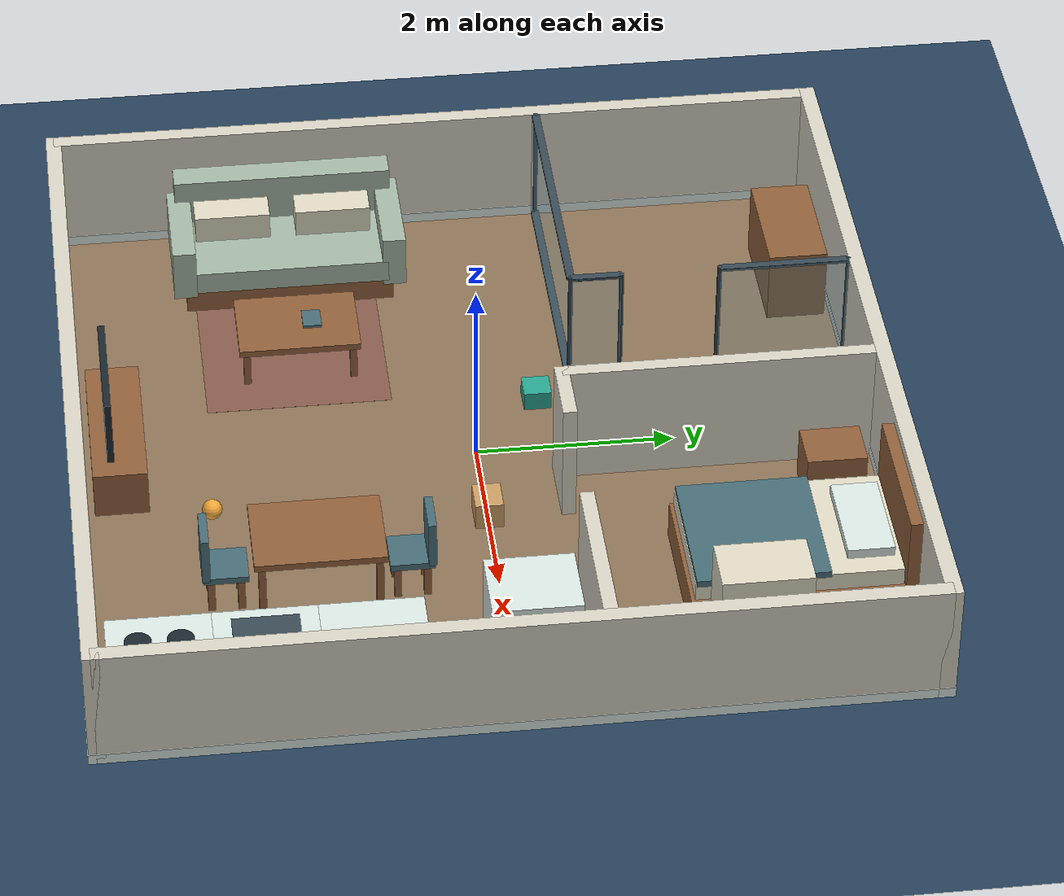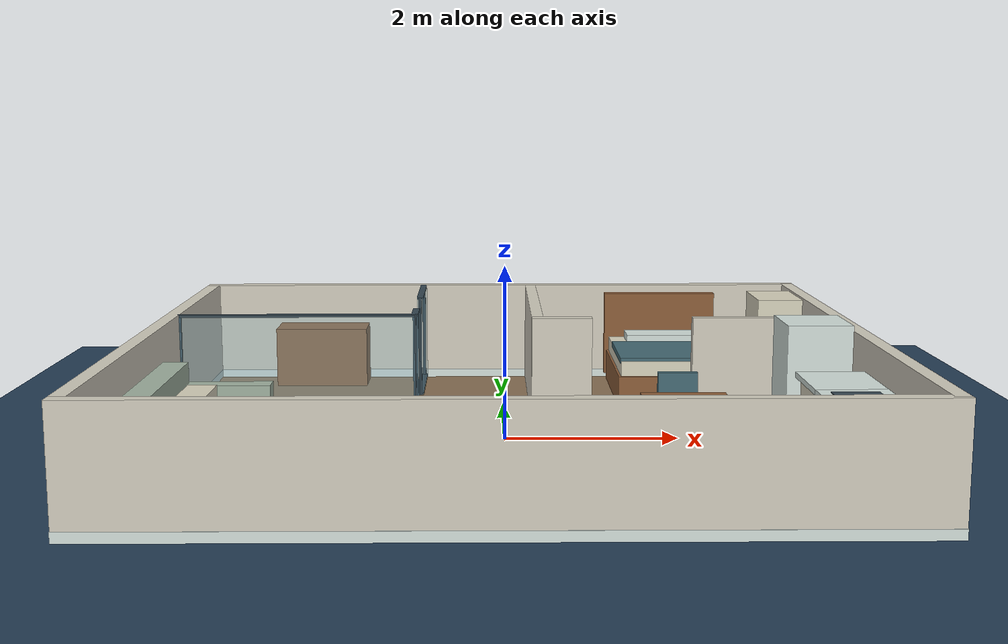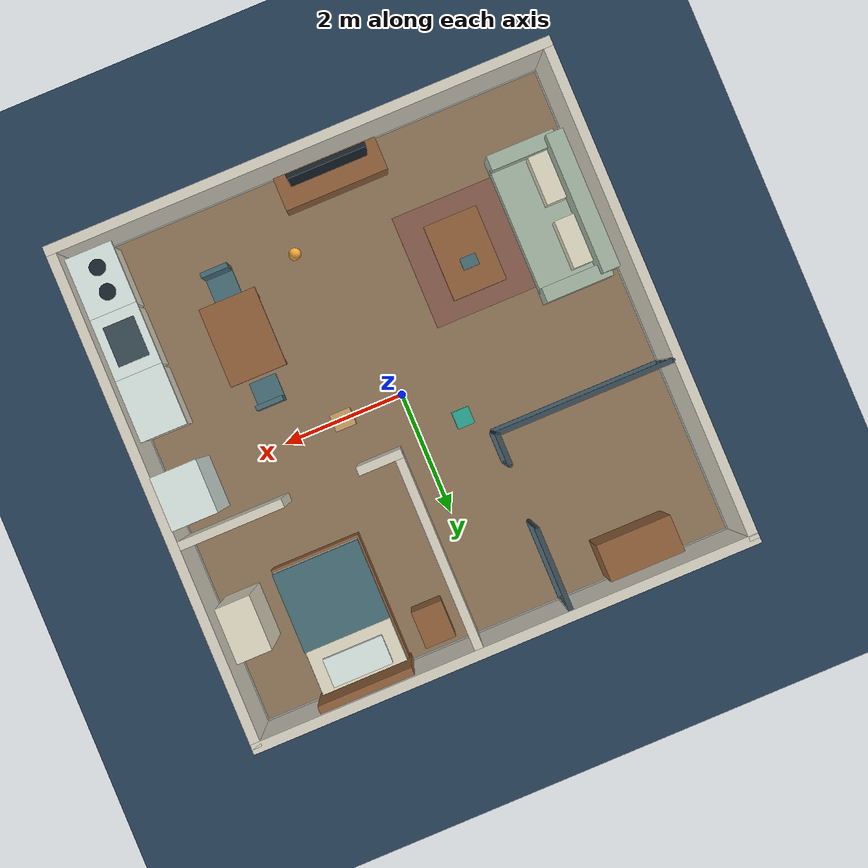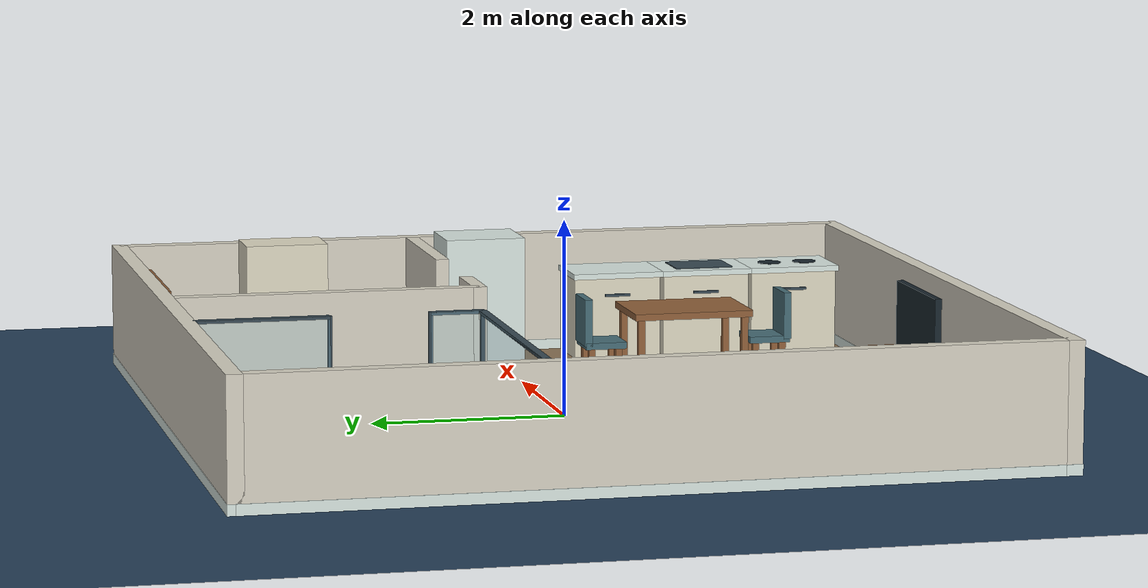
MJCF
<mujoco model="lekiwi_home">
  <!--8 x 8 m apartment. Open spawn at (0,0); three lightweight free-body props.-->
  <statistic center="0 0 .35" extent="5.8" />
  <visual>
    <headlight diffuse=".55 .55 .55" ambient=".35 .35 .35" specular=".1 .1 .1" />
    <quality shadowsize="4096" />
    <global azimuth="135" elevation="-48" offwidth="1440" offheight="1080" />
  </visual>
  <asset>
    <texture name="home_sky" type="skybox" builtin="gradient" rgb1=".32 .40 .49" rgb2=".72 .78 .81" width="512" height="3072" />
    <texture name="home_tiles" type="2d" builtin="checker" rgb1=".53 .43 .32" rgb2=".58 .48 .36" width="512" height="512" />
    <material name="home_wall" rgba=".85 .83 .77 1" roughness=".8" />
    <material name="home_trim" rgba=".32 .36 .35 1" roughness=".8" />
    <material name="home_blue" rgba=".28 .43 .47 1" roughness=".8" />
    <material name="home_yellow" rgba=".95 .66 .22 1" roughness=".8" />
    <material name="home_teal" rgba=".16 .65 .57 1" roughness=".8" />
    <material name="home_white" rgba=".86 .91 .89 1" roughness=".8" />
    <material name="home_steel" rgba=".22 .29 .33 1" roughness=".8" />
    <material name="home_crate" rgba=".65 .42 .24 1" roughness=".8" />
    <material name="home_crate_light" rgba=".80 .62 .39 1" roughness=".8" />
    <material name="home_dark" rgba=".10 .15 .18 1" roughness=".8" />
    <material name="home_floor" texture="home_tiles" texuniform="true" texrepeat="2 .5" reflectance=".03" />
    <material name="home_wood" rgba=".57 .38 .23 1" />
    <material name="home_fabric" rgba=".65 .72 .65 1" />
    <material name="home_linen" rgba=".88 .86 .77 1" />
    <material name="home_rug" rgba=".53 .36 .30 1" />
    <material name="home_glass" rgba=".58 .82 .9 .24" specular=".8" shininess=".8" reflectance=".08" />
    <texture type="2d" name="groundplane" builtin="checker" mark="edge" rgb1="0.2 0.3 0.4" rgb2="0.1 0.2 0.3" markrgb="0.8 0.8 0.8" width="300" height="300" />
    <material name="groundplane" texture="groundplane" texuniform="true" texrepeat="5 5" reflectance="0.2" />
  </asset>
  <worldbody>
    <light name="home_key" pos="-2 -2 6" dir=".2 .2 -1" directional="true" diffuse=".8 .78 .72" />
    <light name="home_fill" pos="3 2 5" dir="-.2 -.1 -1" directional="true" castshadow="false" diffuse=".4 .48 .55" />
    <camera name="home_overview" pos="8 -10 11" xyaxes=".7809 .6247 0 -.4154 .5192 .7461" />
    <camera name="home_top" pos="0 0 12" xyaxes="1 0 0 0 1 0" />
    <geom name="floor" type="plane" size="0 0 .05" material="groundplane" friction=".4 .005 .0001" />
    <!--Apartment finish stops at the outer wall faces; standard infinite checkerboard supplies ground contact.-->
    <geom name="home_floor_finish" type="box" pos="0 0 0" size="4.08 4.08 .001" material="home_floor" contype="0" conaffinity="0" group="2" />
    <!--Low 1.3 m cutaway walls keep all rooms visible from the overview camera.-->
    <geom name="wall_north" type="box" pos="0 4 0.65" size="4.08 0.08 0.65" material="home_wall" />
    <geom name="home_north_skirt" type="box" pos="0 4 0.055" size="4.084 0.084 0.055" material="home_white" />
    <geom name="wall_south" type="box" pos="0 -4 0.65" size="4.08 0.08 0.65" material="home_wall" />
    <geom name="home_south_skirt" type="box" pos="0 -4 0.055" size="4.084 0.084 0.055" material="home_white" />
    <geom name="wall_east" type="box" pos="4 0 0.65" size="0.08 4 0.65" material="home_wall" />
    <geom name="home_east_skirt" type="box" pos="4 0 0.055" size="0.084 4.004 0.055" material="home_white" />
    <geom name="wall_west" type="box" pos="-4 0 0.65" size="0.08 4 0.65" material="home_wall" />
    <geom name="home_west_skirt" type="box" pos="-4 0 0.055" size="0.084 4.004 0.055" material="home_white" />
    <!--Expanded northeast bedroom; 1.2 m doorway, clear central hallway.-->
    <geom name="home_bedroom_west" type="box" pos=".4 2.36 .65" size=".07 1.56 .65" material="home_wall" />
    <geom name="home_bedroom_south_left" type="box" pos=".69 .8 .65" size=".36 .07 .65" material="home_wall" />
    <geom name="home_bedroom_south_right" type="box" pos="3.085 .8 .65" size=".835 .07 .65" material="home_wall" />
    <!--Living room southwest: sofa, rug and a coffee table with individual legs.-->
    <geom name="home_living_rug" type="box" pos="-2.05 -1.7 0.0015" size="1.12 0.94 0.001" material="home_rug" contype="0" conaffinity="0" group="2" mass="0" />
    <geom name="home_sofa_plinth" type="box" pos="-3.18 -1.65 0.16" size="0.55 1.08 0.16" material="home_wood" />
    <geom name="home_sofa_seat" type="box" pos="-3.12 -1.65 0.38" size="0.53 1.03 0.12" material="home_fabric" />
    <geom name="home_sofa_back" type="box" pos="-3.65 -1.65 0.62" size="0.14 1.13 0.38" material="home_fabric" />
    <geom name="home_sofa_arm_-2.74" type="box" pos="-3.14 -2.74 0.49" size="0.55 0.12 0.28" material="home_fabric" />
    <geom name="home_sofa_arm_-0.56" type="box" pos="-3.14 -0.56 0.49" size="0.55 0.12 0.28" material="home_fabric" />
    <geom name="home_sofa_cushion_-2.2" type="box" pos="-3.32 -2.2 0.61" size="0.16 0.39 0.18" material="home_linen" />
    <geom name="home_sofa_cushion_-1.15" type="box" pos="-3.32 -1.15 0.61" size="0.16 0.39 0.18" material="home_linen" />
    <geom name="home_coffee_table_top" type="box" pos="-1.75 -1.65 0.42" size="0.44 0.62 0.035" material="home_wood" />
    <geom name="home_coffee_table_leg_0_0" type="box" pos="-2.1149999999999998 -2.195 0.1925" size="0.035 0.035 0.1925" material="home_wood" />
    <geom name="home_coffee_table_leg_0_1" type="box" pos="-2.1149999999999998 -1.1049999999999998 0.1925" size="0.035 0.035 0.1925" material="home_wood" />
    <geom name="home_coffee_table_leg_1_0" type="box" pos="-1.385 -2.195 0.1925" size="0.035 0.035 0.1925" material="home_wood" />
    <geom name="home_coffee_table_leg_1_1" type="box" pos="-1.385 -1.1049999999999998 0.1925" size="0.035 0.035 0.1925" material="home_wood" />
    <geom name="home_coffee_book" type="box" pos="-1.76 -1.5 0.47" size="0.13 0.095 0.015" material="home_blue" />
    <geom name="home_tv_console" type="box" pos="-0.3 -3.58 0.25" size="0.85 0.27 0.25" material="home_wood" />
    <geom name="home_tv" type="box" pos="-0.3 -3.66 0.84" size="0.64 0.035 0.37" material="home_dark" />
    <!--Kitchen southeast with counters, sink, hob and a dining table.-->
    <geom name="home_kitchen_cabinet_0" type="box" pos="3.57 -3.35 0.44" size="0.35 0.48 0.44" material="home_linen" />
    <geom name="home_kitchen_worktop_0" type="box" pos="3.55 -3.35 0.91" size="0.39 0.5 0.03" material="home_white" />
    <geom name="home_cabinet_handle_0" type="box" pos="3.209 -3.35 0.69" size="0.015 0.14 0.014" material="home_steel" />
    <geom name="home_kitchen_cabinet_1" type="box" pos="3.57 -2.35 0.44" size="0.35 0.48 0.44" material="home_linen" />
    <geom name="home_kitchen_worktop_1" type="box" pos="3.55 -2.35 0.91" size="0.39 0.5 0.03" material="home_white" />
    <geom name="home_cabinet_handle_1" type="box" pos="3.209 -2.35 0.69" size="0.015 0.14 0.014" material="home_steel" />
    <geom name="home_kitchen_cabinet_2" type="box" pos="3.57 -1.35 0.44" size="0.35 0.48 0.44" material="home_linen" />
    <geom name="home_kitchen_worktop_2" type="box" pos="3.55 -1.35 0.91" size="0.39 0.5 0.03" material="home_white" />
    <geom name="home_cabinet_handle_2" type="box" pos="3.209 -1.35 0.69" size="0.015 0.14 0.014" material="home_steel" />
    <geom name="home_sink" type="box" pos="3.53 -2.35 0.946" size="0.25 0.32 0.005" material="home_steel" contype="0" conaffinity="0" group="2" mass="0" />
    <geom name="home_hob_-3.55" type="cylinder" size=".13 .004" pos="3.5 -3.55 .948" material="home_dark" contype="0" conaffinity="0" group="2" />
    <geom name="home_hob_-3.15" type="cylinder" size=".13 .004" pos="3.5 -3.15 .948" material="home_dark" contype="0" conaffinity="0" group="2" />
    <geom name="home_fridge" type="box" pos="3.55 0.13 0.68" size="0.37 0.43 0.68" material="home_white" />
    <geom name="home_dining_table_top" type="box" pos="1.9 -1.75 0.73" size="0.46 0.64 0.035" material="home_wood" />
    <geom name="home_dining_table_leg_0_0" type="box" pos="1.515 -2.315 0.3475" size="0.035 0.035 0.3475" material="home_wood" />
    <geom name="home_dining_table_leg_0_1" type="box" pos="1.515 -1.1849999999999998 0.3475" size="0.035 0.035 0.3475" material="home_wood" />
    <geom name="home_dining_table_leg_1_0" type="box" pos="2.2849999999999997 -2.315 0.3475" size="0.035 0.035 0.3475" material="home_wood" />
    <geom name="home_dining_table_leg_1_1" type="box" pos="2.2849999999999997 -1.1849999999999998 0.3475" size="0.035 0.035 0.3475" material="home_wood" />
    <geom name="home_chair_0_top" type="box" pos="1.9 -2.65 0.4" size="0.22 0.22 0.035" material="home_blue" />
    <geom name="home_chair_0_leg_0_0" type="box" pos="1.755 -2.795 0.1825" size="0.035 0.035 0.1825" material="home_wood" />
    <geom name="home_chair_0_leg_0_1" type="box" pos="1.755 -2.505 0.1825" size="0.035 0.035 0.1825" material="home_wood" />
    <geom name="home_chair_0_leg_1_0" type="box" pos="2.045 -2.795 0.1825" size="0.035 0.035 0.1825" material="home_wood" />
    <geom name="home_chair_0_leg_1_1" type="box" pos="2.045 -2.505 0.1825" size="0.035 0.035 0.1825" material="home_wood" />
    <geom name="home_chair_back_0" type="box" pos="1.9 -2.84 0.65" size="0.22 0.04 0.25" material="home_blue" />
    <geom name="home_chair_1_top" type="box" pos="1.9 -0.85 0.4" size="0.22 0.22 0.035" material="home_blue" />
    <geom name="home_chair_1_leg_0_0" type="box" pos="1.755 -0.9950000000000001 0.1825" size="0.035 0.035 0.1825" material="home_wood" />
    <geom name="home_chair_1_leg_0_1" type="box" pos="1.755 -0.705 0.1825" size="0.035 0.035 0.1825" material="home_wood" />
    <geom name="home_chair_1_leg_1_0" type="box" pos="2.045 -0.9950000000000001 0.1825" size="0.035 0.035 0.1825" material="home_wood" />
    <geom name="home_chair_1_leg_1_1" type="box" pos="2.045 -0.705 0.1825" size="0.035 0.035 0.1825" material="home_wood" />
    <geom name="home_chair_back_1" type="box" pos="1.9 -0.6599999999999999 0.65" size="0.22 0.04 0.25" material="home_blue" />
    <!--Bedroom: bed, nightstand and wardrobe; floor-level footprints block LiDAR.-->
    <geom name="home_bed_frame" type="box" pos="2.195 2.78 0.2" size="0.73 1.05 0.2" material="home_wood" />
    <geom name="home_mattress" type="box" pos="2.195 2.78 0.47" size="0.7 1.01 0.12" material="home_linen" />
    <geom name="home_bed_duvet" type="box" pos="2.195 2.43 0.6" size="0.71 0.65 0.035" material="home_blue" />
    <geom name="home_bed_pillow" type="box" pos="2.195 3.5 0.63" size="0.49 0.23 0.06" material="home_white" />
    <geom name="home_headboard" type="box" pos="2.195 3.86 0.63" size="0.76 0.06 0.56" material="home_wood" />
    <geom name="home_nightstand" type="box" pos="0.915 3.45 0.27" size="0.25 0.3 0.27" material="home_wood" />
    <geom name="home_wardrobe" type="box" pos="3.505 2.3 0.68" size="0.28 0.44 0.68" material="home_linen" />
    <!--Console against the north wall of the glass room.-->
    <geom name="home_entry_console" type="box" pos="-2.45 3.56 .39" size="0.61 0.3 0.39" material="home_wood" />
    <!--Pushable props. Explicit masses, free joints, and modest friction; reset restores positions.-->
    <body name="home_cardboard_box" pos="1.0 0 .145">
      <freejoint name="home_cardboard_box_free" />
      <geom name="home_cardboard_box_geom" type="box" size=".17 .14 .14" mass=".18" material="home_crate_light" friction=".22 .002 .0001" condim="4" />
    </body>
    <body name="home_foam_block" pos="-.75 .7 .105">
      <freejoint name="home_foam_block_free" />
      <geom name="home_foam_block_geom" type="box" size=".14 .14 .10" mass=".08" material="home_teal" friction=".22 .002 .0001" condim="4" />
    </body>
    <body name="home_toy_ball" pos=".7 -2.7 .105">
      <freejoint name="home_toy_ball_free" />
      <geom name="home_toy_ball_geom" type="sphere" size=".10" mass=".06" material="home_yellow" friction=".22 .002 .0001" condim="4" />
    </body>
    <!--Northwest square room: 2.8 x 2.8 m clear interior. Glass south/east partitions; 1 m east doorway.-->
    <geom name="home_glass_south" type="box" pos="-2.5 1.08 .65" size="1.42 .04 .65" material="home_glass" />
    <geom name="home_glass_south_base" type="box" pos="-2.5 1.08 .025" size="1.42 .04 .015" material="home_steel" />
    <geom name="home_glass_south_cap" type="box" pos="-2.5 1.08 1.285" size="1.42 .04 .015" material="home_steel" />
    <geom name="home_glass_east_lower" type="box" pos="-1.08 1.34 .65" size=".04 .26 .65" material="home_glass" />
    <geom name="home_glass_east_lower_base" type="box" pos="-1.08 1.34 .025" size=".04 .26 .015" material="home_steel" />
    <geom name="home_glass_east_lower_cap" type="box" pos="-1.08 1.34 1.285" size=".04 .26 .015" material="home_steel" />
    <geom name="home_glass_east_upper" type="box" pos="-1.08 3.26 .65" size=".04 .66 .65" material="home_glass" />
    <geom name="home_glass_east_upper_base" type="box" pos="-1.08 3.26 .025" size=".04 .66 .015" material="home_steel" />
    <geom name="home_glass_east_upper_cap" type="box" pos="-1.08 3.26 1.285" size=".04 .66 .015" material="home_steel" />
    <geom name="home_glass_post_0" type="box" pos="-3.92 1.08 .65" size=".02 .02 .65" material="home_steel" />
    <geom name="home_glass_post_1" type="box" pos="-1.08 1.08 .65" size=".02 .02 .65" material="home_steel" />
    <geom name="home_glass_post_2" type="box" pos="-1.08 1.6 .65" size=".02 .02 .65" material="home_steel" />
    <geom name="home_glass_post_3" type="box" pos="-1.08 2.6 .65" size=".02 .02 .65" material="home_steel" />
    <geom name="home_glass_post_4" type="box" pos="-1.08 3.92 .65" size=".02 .02 .65" material="home_steel" />
  </worldbody>
</mujoco>
